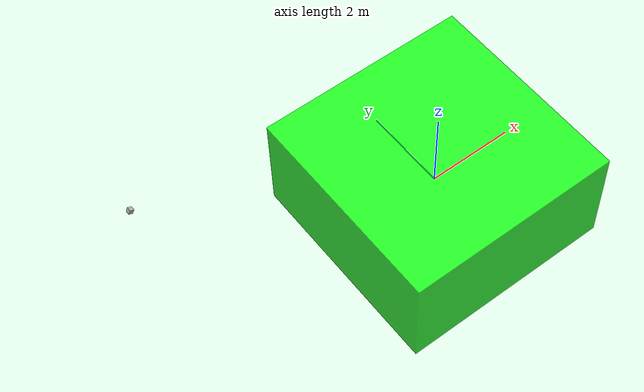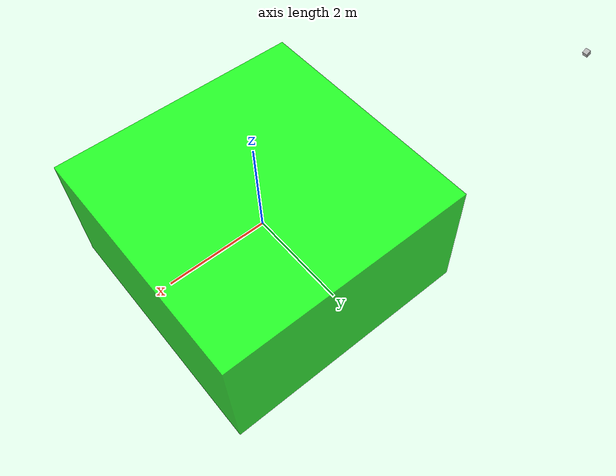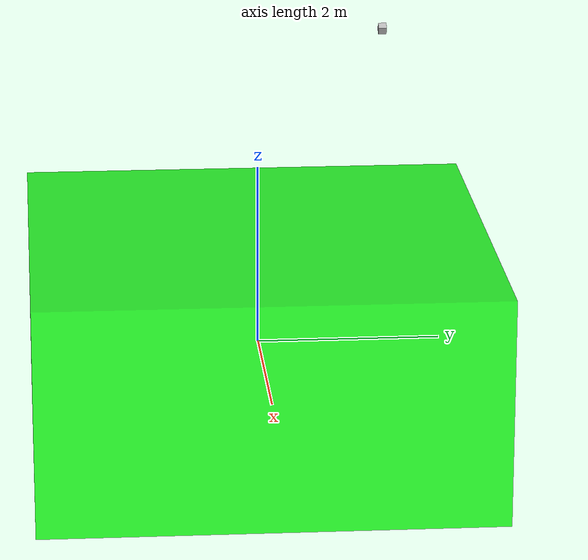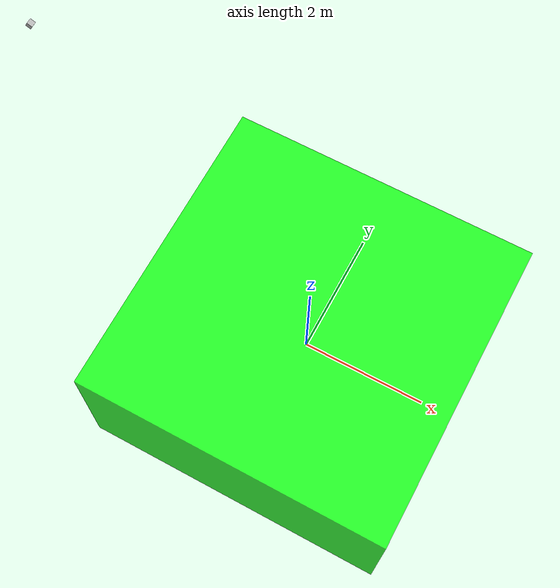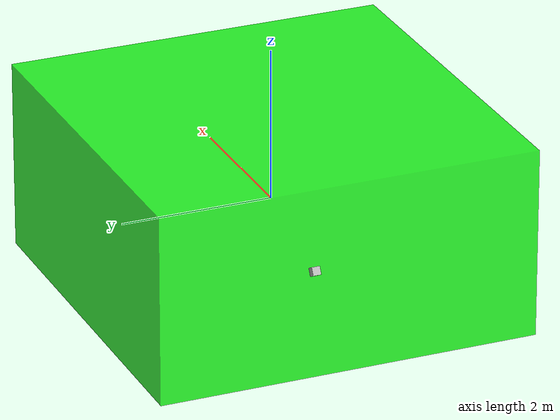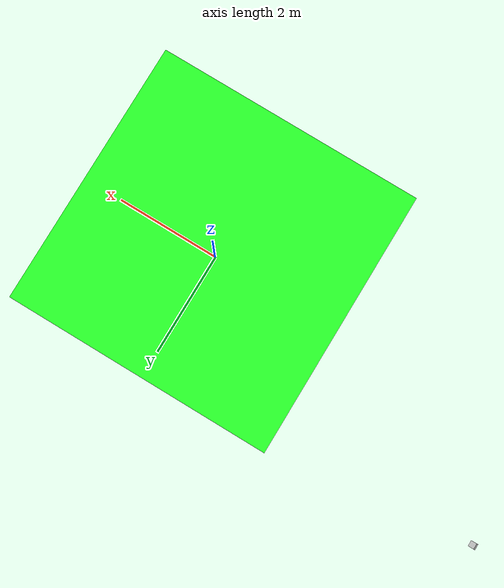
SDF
<?xml version="1.0" ?>
<sdf version="1.6">
  <world name="camera_sensor">
    <physics name="fast" type="ignored">
      <max_step_size>0.001</max_step_size>
      <real_time_factor>1.0</real_time_factor>
    </physics>

    <plugin
      filename="gz-sim-sensors-system"
      name="gz::sim::systems::Sensors">
      <render_engine>ogre2</render_engine>
    </plugin>
    <plugin
      filename="gz-sim-scene-broadcaster-system"
      name="gz::sim::systems::SceneBroadcaster">
    </plugin>

    <model name="box">
      <pose>0 0 0 0 0 0</pose>
      <static>true</static>
      <link name="link">

        <collision name="collision_0">
          <geometry>
            <box><size>5 5 2.5</size></box>
          </geometry>
        </collision>
        <visual name="visual_0">
          <geometry>
            <box><size>5 5 2.5</size></box>
          </geometry>
          <material>
            <ambient>0 1 0 0.8</ambient>
            <diffuse>0 1 0 0.8</diffuse>
            <specular>1 1 1 0.8</specular>
          </material>
        </visual>
      </link>
    </model>
    <model name="camera">
      <static>true</static>
      <pose>-6 2 2 0 0.5 0</pose>
      <link name="link">
        <inertial>
          <mass>0.1</mass>
          <inertia>
            <ixx>0.000166667</ixx>
            <iyy>0.000166667</iyy>
            <izz>0.000166667</izz>
          </inertia>
        </inertial>
        <visual name="visual">
          <geometry>
            <box>
              <size>0.1 0.1 0.1</size>
            </box>
          </geometry>
        </visual>
        <sensor name="camera" type="camera">
          <pose>1 0 1.3 0 0 0</pose>
          <camera>
            <triggered>true</triggered>
            <trigger_topic>test_trigger</trigger_topic>
            <camera_info_topic>test_camera_info</camera_info_topic>
            <horizontal_fov>1.047</horizontal_fov>
            <image>
              <width>320</width>
              <height>240</height>
            </image>
            <clip>
              <near>0.1</near>
              <far>100</far>
            </clip>
            <noise>
              <type>gaussian_quantized</type>
              <mean>0.01</mean>
              <stddev>0.0002</stddev>
            </noise>
          </camera>
          <always_on>1</always_on>
          <update_rate>30</update_rate>
          <visualize>true</visualize>
          <topic>camera</topic>
        </sensor>
      </link>
    </model>

    <model name="default_topics">
      <pose>10 0 0.5 0 0 0.0 </pose>
      <static>true</static>
      <link name="camera_link">
        <sensor name="camera" type="camera">
          <update_rate>50</update_rate>
          <camera>
            <triggered>true</triggered>
            <horizontal_fov>1.047</horizontal_fov>
            <image>
              <width>320</width>
              <height>240</height>
            </image>
            <clip>
              <near>0.1</near>
              <far>100</far>
            </clip>
          </camera>
        </sensor>
      </link>

      <link name="gpu_lidar_link">
        <sensor name='gpu_lidar' type='gpu_lidar'>"
          <update_rate>40</update_rate>
          <ray>
            <scan>
              <horizontal>
                <samples>640</samples>
                <resolution>1</resolution>
                <min_angle>-1.396263</min_angle>
                <max_angle>1.396263</max_angle>
              </horizontal>
              <vertical>
                <samples>1</samples>
                <resolution>0.01</resolution>
                <min_angle>0</min_angle>
                <max_angle>0</max_angle>
              </vertical>
            </scan>
            <range>
              <min>0.08</min>
              <max>10.0</max>
              <resolution>0.01</resolution>
            </range>
          </ray>
        </sensor>
      </link>

      <link name="depth_camera_link">
        <sensor name="depth_camera" type="depth_camera">
          <update_rate>25</update_rate>
          <camera>
            <triggered>true</triggered>
            <horizontal_fov>1.05</horizontal_fov>
            <image>
              <width>256</width>
              <height>256</height>
              <format>R_FLOAT32</format>
            </image>
            <clip>
              <near>0.1</near>
              <far>10.0</far>
            </clip>
            <depth_camera>
              <clip>
                <near>0.05</near>
                <far>9.0</far>
              </clip>
            </depth_camera>
          </camera>
        </sensor>
      </link>

      <link name="rgbd_camera_link">
        <sensor name="rgbd_camera" type="rgbd_camera">
          <update_rate>10</update_rate>
          <camera>
            <triggered>true</triggered>
            <horizontal_fov>1.05</horizontal_fov>
            <image>
              <width>256</width>
              <height>256</height>
            </image>
            <clip>
              <near>0.1</near>
              <far>10.0</far>
            </clip>
          </camera>
        </sensor>
      </link>

      <link name="thermal_camera_link">
        <sensor name="thermal_camera" type="thermal_camera">
          <update_rate>40</update_rate>
          <camera>
            <triggered>true</triggered>
            <horizontal_fov>1.15</horizontal_fov>
            <image>
              <width>300</width>
              <height>200</height>
            </image>
            <clip>
              <near>0.14</near>
              <far>120.0</far>
            </clip>
          </camera>
        </sensor>
      </link>

      <link name="segmentation_camera_link">
        <sensor name="segmentation_camera" type="segmentation_camera">
          <update_rate>25</update_rate>
          <camera>
            <triggered>true</triggered>
            <horizontal_fov>1.0</horizontal_fov>
            <image>
              <width>320</width>
              <height>240</height>
            </image>
            <clip>
              <near>0.11</near>
              <far>20.0</far>
            </clip>
            <segmentation_type>panoptic</segmentation_type>
          </camera>
        </sensor>
      </link>

      <link name="wide_angle_camera_link">
        <sensor name="wide_angle_camera" type="wideanglecamera">
          <update_rate>25</update_rate>
          <camera>
            <triggered>true</triggered>
            <horizontal_fov>3.14</horizontal_fov>
            <image>
              <width>320</width>
              <height>240</height>
            </image>
            <clip>
              <near>0.1</near>
              <far>100.0</far>
            </clip>
          </camera>
        </sensor>
      </link>

    </model>
  </world>
</sdf>
